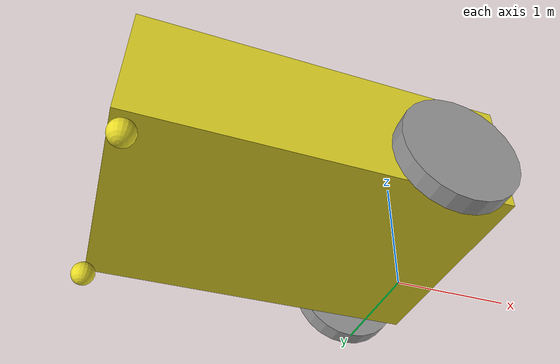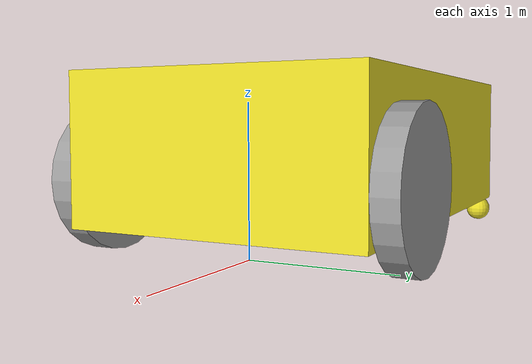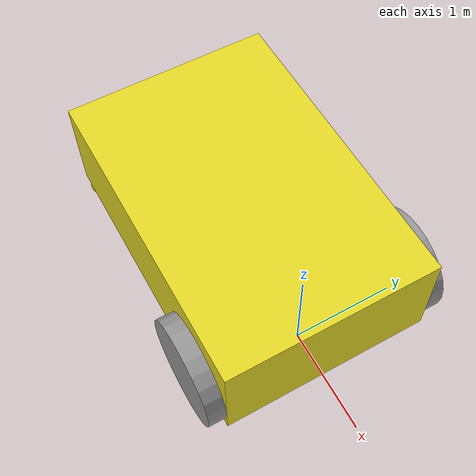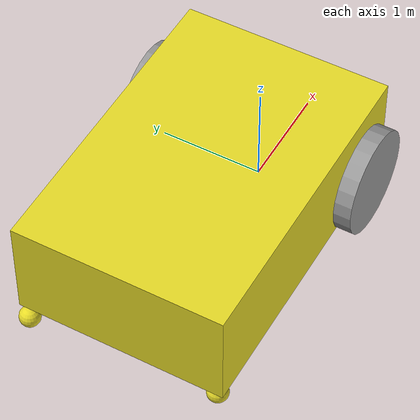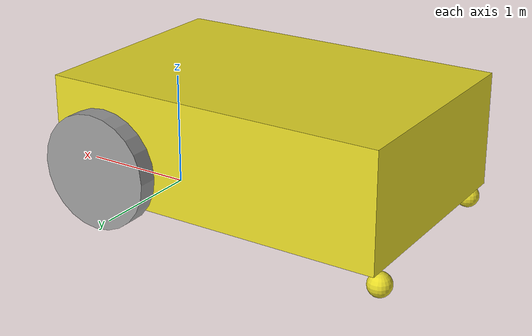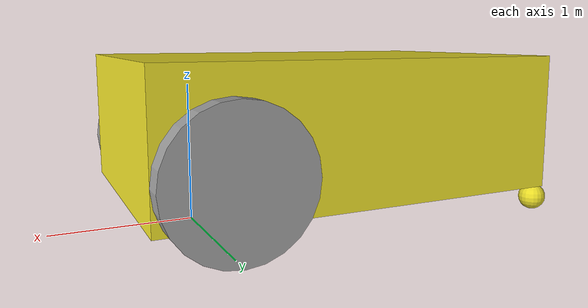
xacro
<?xml version="1.0"?>
<!-- Revolute-Revolute Manipulator -->
<robot name="course_agv" xmlns:xacro="http://www.ros.org/wiki/xacro">

    <xacro:property name="PI" value="3.1415926535897931" />
    <xacro:property name="mass" value="30" />
    <xacro:property name="length" value="3" />
    <xacro:property name="width" value="2" />
    <xacro:property name="height" value="1" />
    <xacro:property name="chassis_height" value="0.2" />
    <xacro:property name="caster_radius" value="${chassis_height/2}" />
    <xacro:property name="wheel_mass" value="0.1" />
    <xacro:property name="wheel_radius" value="0.5" />
    <xacro:property name="wheel_thickness" value="${wheel_radius/3}" />
    <xacro:property name="center_span" value="1.0" />
    <xacro:property name="x_axis_offset" value="0.0" />

    <!-- Import all Gazebo-customization elements, including Gazebo colors -->
    <xacro:include filename="$(find course_agv_description)/urdf/course_agv.gazebo" />
    <!-- Import Rviz colors -->
    <xacro:include filename="$(find course_agv_description)/urdf/materials.xacro" />

    <!-- joints and links-->

    <link name="robot_base" />

    <!-- left wheel -->
    <joint name="course_agv__left_wheel_joint" type="continuous">
        <parent link="robot_base" />
        <child link="course_agv__left_wheel" />
        <origin rpy="0 ${PI/2.0} ${PI/2.0}" xyz="0.0 ${(width / 2.0 + wheel_thickness / 2.0)} ${wheel_radius}" />
        <axis xyz="9.00000000e-05   9.00000000e-05   1.00000000e+00" />
        <limit effort="100" lower="0" upper="0" velocity="10" />
    </joint>
    <link name="course_agv__left_wheel">
        <inertial>
            <mass value="${wheel_mass}" />
            <origin rpy="0 0 0" xyz="0 0 0" />
            <inertia ixx="0" ixy="0" ixz="0" iyy="0" iyz="0" izz="0" />
        </inertial>
        <collision name="course_agv__collision">
            <origin rpy="0 0 0" xyz="0.0 0.0 0.0" />
            <geometry>
                <cylinder length="${wheel_thickness}" radius="${wheel_radius}" />
            </geometry>
        </collision>
        <visual>
            <origin rpy="0 0 0" xyz="0.0 0.0 0.0" />
            <geometry>
                <cylinder length="${wheel_thickness}" radius="${wheel_radius}" />
            </geometry>
            <material name="grey" />
        </visual>
    </link>

    <!-- right wheel -->
    <joint name="course_agv__right_wheel_joint" type="continuous">
        <parent link="robot_base" />
        <child link="course_agv__right_wheel" />
        <origin rpy="0 ${PI/2.0} ${PI/2.0}" xyz="0.0 ${-(width / 2.0 + wheel_thickness / 2.0)}  ${wheel_radius}" />
        <axis xyz="9.00000000e-05   9.00000000e-05   1.00000000e+00" />
        <limit effort="100" lower="0" upper="0" velocity="10" />
    </joint>
    <link name="course_agv__right_wheel">
        <inertial>
            <mass value="${wheel_mass}" />
            <origin rpy="0 0 0" xyz="0 0 0" />
            <inertia ixx="0" ixy="0" ixz="0" iyy="0" iyz="0" izz="0" />
        </inertial>
        <collision name="course_agv__collision">
            <origin rpy="0 0 0" xyz="0.0 0.0 0.0" />
            <geometry>
                <cylinder length="${wheel_thickness}" radius="${wheel_radius}" />
            </geometry>
        </collision>
        <visual>
            <origin rpy="0 0 0" xyz="0.0 0.0 0.0" />
            <geometry>
                <cylinder length="${wheel_thickness}" radius="${wheel_radius}" />
            </geometry>
            <material name="grey" />
        </visual>
    </link>

    <!-- imu -->
    <joint name="course_agv__imu_joint" type="fixed">
        <parent link="robot_base" />
        <child link="course_agv__imu" />
        <origin rpy="0  0  0" xyz="0.0 0.0 ${height/2+chassis_height}" />
        <axis xyz="0  0  0" />
        <limit effort="0" lower="0" upper="0" velocity="0" />
    </joint>
    <link name="course_agv__imu">
        <collision>
            <origin xyz="0 0 0" rpy="0 0 0" />
            <geometry>
                <box size="0.02 0.02 0.01" />
            </geometry>
        </collision>
        <visual>
            <origin xyz="0 0 0" rpy="0 0 0" />
            <geometry>
                <box size="0.02 0.02 0.01" />
            </geometry>
            <material name="red" />
        </visual>
        <inertial>
            <mass value="0.001" />
            <origin xyz="0 0 0" rpy="0 0 0" />
            <inertia ixx="0.00000015" ixy="0" ixz="0" iyy="0.00000015" iyz="0" izz="0.00000015" />
        </inertial>
    </link>

    <!-- chassis -->
    <joint name="course_agv__chassis_joint" type="fixed">
        <parent link="robot_base" />
        <child link="robot_chassis" />
        <origin xyz="${-center_span} 0.0 0.0" />
    </joint>
    <link name="robot_chassis">
        <inertial>
            <mass value="${mass}" />
            <origin rpy="0 0 0" xyz="0 0 0" />
            <inertia ixx="${mass / 12.0 * (width*width + height*height)}" ixy="0" ixz="0" iyy="${mass / 12.0 * (length*length + height*height)}" iyz="0" izz="${mass / 12.0 * (width*width + length*length)}" />
        </inertial>
        <collision name="course_agv__collision">
            <origin rpy="0 0 0" xyz="${-(length/2-wheel_radius)+center_span} 0.0 ${height/2.0+chassis_height}" />
            <geometry>
                <box size="${length} ${width} ${height}" />
            </geometry>
        </collision>
        <visual>
            <origin rpy="0 0 0" xyz="${-(length/2-wheel_radius)+center_span} 0.0 ${height/2.0+chassis_height}" /> <!-- change here-->
            <geometry>
                <box size="${length} ${width} ${height}" />
            </geometry>
            <material name="yellow" />
        </visual>
        <collision name="course_agv__left_caster_collision">
            <origin rpy="0 0 0" xyz="${-(length-wheel_radius-center_span)} ${width/2-caster_radius} ${caster_radius}" />
            <geometry>
                <sphere radius="${caster_radius}" />
            </geometry>
        </collision>
        <visual>
            <origin rpy="0 0 0" xyz="${-(length-wheel_radius-center_span)} ${width/2-caster_radius} ${caster_radius}" />
            <geometry>
                <sphere radius="${caster_radius}" />
            </geometry>
            <material name="yellow" />
        </visual>
        <collision name="course_agv__right_caster_collision">
            <origin rpy="0 0 0" xyz="${-(length-wheel_radius-center_span-caster_radius)} ${-(width/2-caster_radius)} ${caster_radius}" />
            <geometry>
                <sphere radius="${caster_radius}" />
            </geometry>
        </collision>
        <visual>
            <origin rpy="0 0 0" xyz="${-(length-wheel_radius-center_span-caster_radius)} ${-(width/2-caster_radius)} ${caster_radius}" />
            <geometry>
                <sphere radius="${caster_radius}" />
            </geometry>
            <material name="yellow" />
        </visual>
    </link>

    <!-- hokuyo laser -->

    <transmission name="tran_left_wheel">
        <type>transmission_interface/SimpleTransmission</type>
        <joint name="course_agv__left_wheel_joint">
            <hardwareInterface>hardware_interface/VelocityJointInterface</hardwareInterface>
        </joint>
        <actuator name="motor_left">
            <hardwareInterface>hardware_interface/VelocityJointInterface</hardwareInterface>
            <mechanicalReduction>1</mechanicalReduction>
        </actuator>
    </transmission>

    <transmission name="tran_right_wheel">
        <type>transmission_interface/SimpleTransmission</type>
        <joint name="course_agv__right_wheel_joint">
            <hardwareInterface>hardware_interface/VelocityJointInterface</hardwareInterface>
        </joint>
        <actuator name="motor_right">
            <hardwareInterface>hardware_interface/VelocityJointInterface</hardwareInterface>
            <mechanicalReduction>1</mechanicalReduction>
        </actuator>
    </transmission>
</robot>
